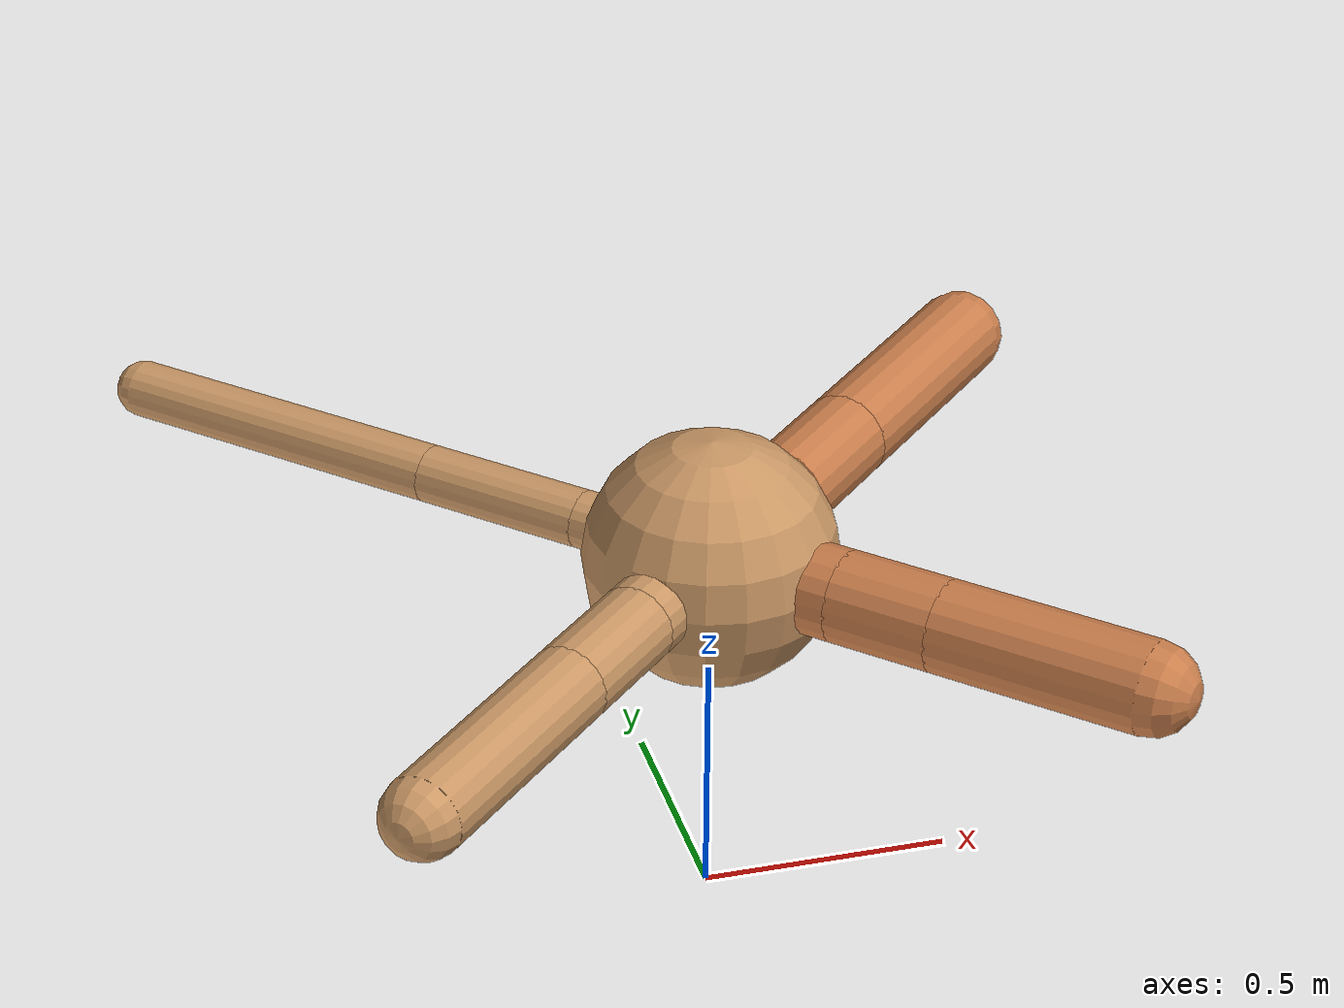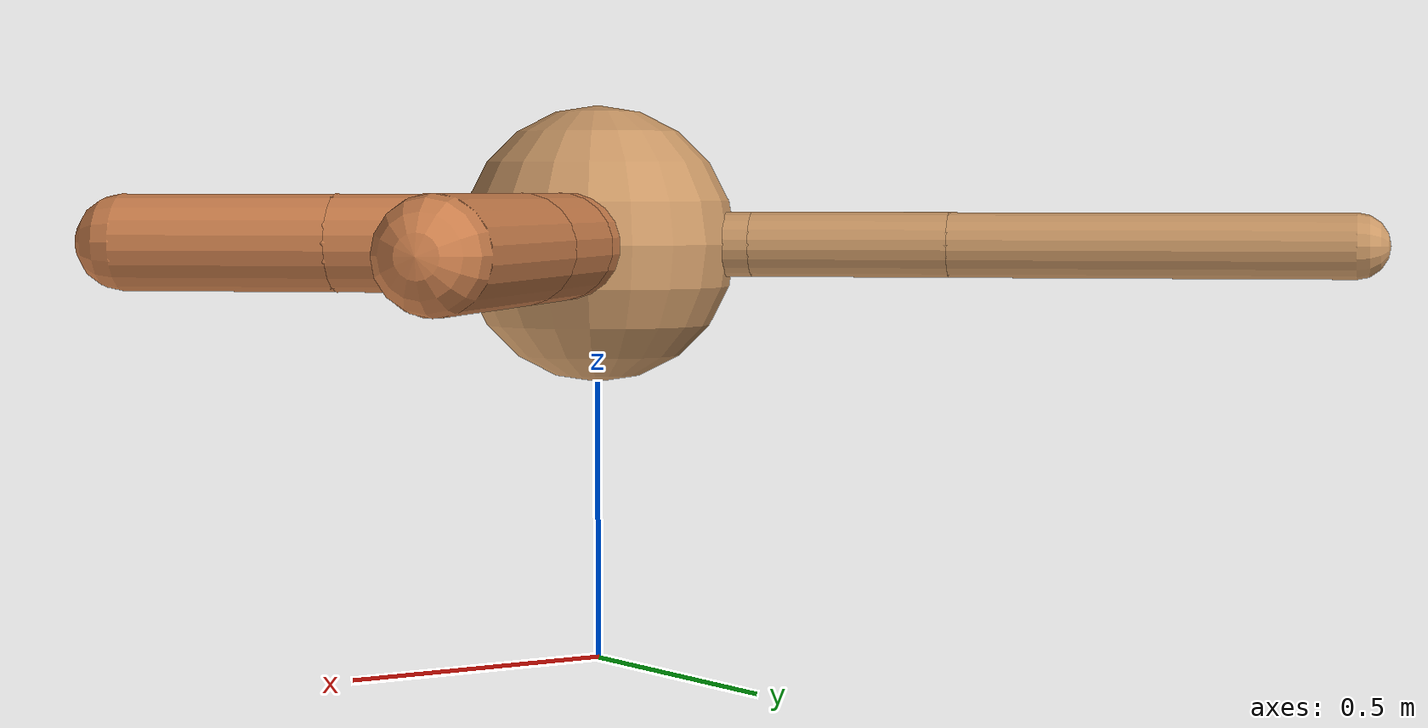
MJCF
<?xml version="1.0" ?>
<mujoco model="ant">

	<compiler angle="degree" coordinate="local" inertiafromgeom="true"/>

	<option integrator="RK4" timestep="0.01"/>

	<custom>

		<numeric data="0.0 0.0 0.55 1.0 0.0 0.0 0.0 0.0 1.0 0.0 -1.0 0.0 -1.0 0.0 1.0" name="init_qpos"/>

	</custom>

	<default>

		<joint armature="1" damping="1" limited="true"/>

		<geom conaffinity="0" condim="3" density="5.0" friction="1.5 0.1 0.1" margin="0.01" rgba="0.8 0.6 0.4 1"/>

	</default>

	<worldbody>

		<body name="torso" pos="0 0 0.75">

			<geom name="torso_geom" pos="0 0 0" size="0.24838593849989563" type="sphere"/>

			<!--joint armature="0" damping="0" limited="false" margin="0.01" name="root" pos="0 0 0" type="free"/-->

			<body name="front_left_leg" pos="0 0 0">

				<geom fromto="0 0 0 0.2 0.2 0" name="aux_1_geom" size="0.0923030850952707" type="capsule" rgba=".8 .5 .3 1"/>

				<body name="aux_1" pos="0.2 0.2 0">

					<joint axis="0 0 1" name="hip_1" pos="0.0 0.0 0.0" range="-40 40" type="hinge"/>

					<geom fromto="0 0 0 0.18683758322319857 0.18683758322319857 0" name="left_leg_geom" size="0.0923030850952707" type="capsule" rgba=".8 .5 .3 1"/>

					<body pos="0.18683758322319857 0.18683758322319857 0" name="front_left_foot">

						<joint axis="-1 1 0" name="ankle_1" pos="0.0 0.0 0.0" range="30 100" type="hinge"/>

						<geom fromto="0 0 0 0.37367516644639714 0.37367516644639714 0" name="left_ankle_geom" size="0.0923030850952707" type="capsule" rgba=".8 .5 .3 1"/>

					</body>

				</body>

			</body>

			<body name="front_right_leg" pos="0 0 0">

				<geom fromto="0 0 0 -0.2 0.2 0" name="aux_2_geom" size="0.05790153072985852" type="capsule"/>

				<body name="aux_2" pos="-0.2 0.2 0">

					<joint axis="0 0 1" name="hip_2" pos="0.0 0.0 0.0" range="-40 40" type="hinge"/>

					<geom fromto="0 0 0 -0.24896433074173432 0.24896433074173432 0" name="right_leg_geom" size="0.05790153072985852" type="capsule"/>

					<body pos="-0.24896433074173432 0.24896433074173432 0" name="front_right_foot">

						<joint axis="1 1 0" name="ankle_2" pos="0.0 0.0 0.0" range="-100 -30" type="hinge"/>

						<geom fromto="0 0 0 -0.49792866148346865 0.49792866148346865 0" name="right_ankle_geom" size="0.05790153072985852" type="capsule"/>

					</body>

				</body>

			</body>

			<body name="left_back_leg" pos="0 0 0">

				<geom fromto="0 0 0 -0.2 -0.2 0" name="aux_3_geom" size="0.07880188549903576" type="capsule"/>

				<body name="aux_3" pos="-0.2 -0.2 0">

					<joint axis="0 0 1" name="hip_3" pos="0.0 0.0 0.0" range="-40 40" type="hinge"/>

					<geom fromto="0 0 0 -0.167422898518591 -0.167422898518591 0" name="back_leg_geom" size="0.07880188549903576" type="capsule"/>

					<body pos="-0.167422898518591 -0.167422898518591 0" name="left_back_foot">

						<joint axis="-1 1 0" name="ankle_3" pos="0.0 0.0 0.0" range="-100 -30" type="hinge"/>

						<geom fromto="0 0 0 -0.334845797037182 -0.334845797037182 0" name="third_ankle_geom" size="0.07880188549903576" type="capsule"/>

					</body>

				</body>

			</body>

			<body name="right_back_leg" pos="0 0 0">

				<geom fromto="0 0 0 0.2 -0.2 0" name="aux_4_geom" size="0.09083114986893304" type="capsule" rgba=".8 .5 .3 1"/>

				<body name="aux_4" pos="0.2 -0.2 0">

					<joint axis="0 0 1" name="hip_4" pos="0.0 0.0 0.0" range="-40 40" type="hinge"/>

					<geom fromto="0 0 0 0.14570270557004278 -0.14570270557004278 0" name="rightback_leg_geom" size="0.09083114986893304" type="capsule" rgba=".8 .5 .3 1"/>

					<body pos="0.14570270557004278 -0.14570270557004278 0" name="right_back_foot">

						<joint axis="1 1 0" name="ankle_4" pos="0.0 0.0 0.0" range="30 100" type="hinge"/>

						<geom fromto="0 0 0 0.29140541114008556 -0.29140541114008556 0" name="fourth_ankle_geom" size="0.09083114986893304" type="capsule" rgba=".8 .5 .3 1"/>

					</body>

				</body>

			</body>

		</body>

	</worldbody>

	<actuator>

		<motor ctrllimited="true" ctrlrange="-1.0 1.0" joint="hip_4" gear="150"/>

		<motor ctrllimited="true" ctrlrange="-1.0 1.0" joint="ankle_4" gear="150"/>

		<motor ctrllimited="true" ctrlrange="-1.0 1.0" joint="hip_1" gear="150"/>

		<motor ctrllimited="true" ctrlrange="-1.0 1.0" joint="ankle_1" gear="150"/>

		<motor ctrllimited="true" ctrlrange="-1.0 1.0" joint="hip_2" gear="150"/>

		<motor ctrllimited="true" ctrlrange="-1.0 1.0" joint="ankle_2" gear="150"/>

		<motor ctrllimited="true" ctrlrange="-1.0 1.0" joint="hip_3" gear="150"/>

		<motor ctrllimited="true" ctrlrange="-1.0 1.0" joint="ankle_3" gear="150"/>

	</actuator>

</mujoco>
